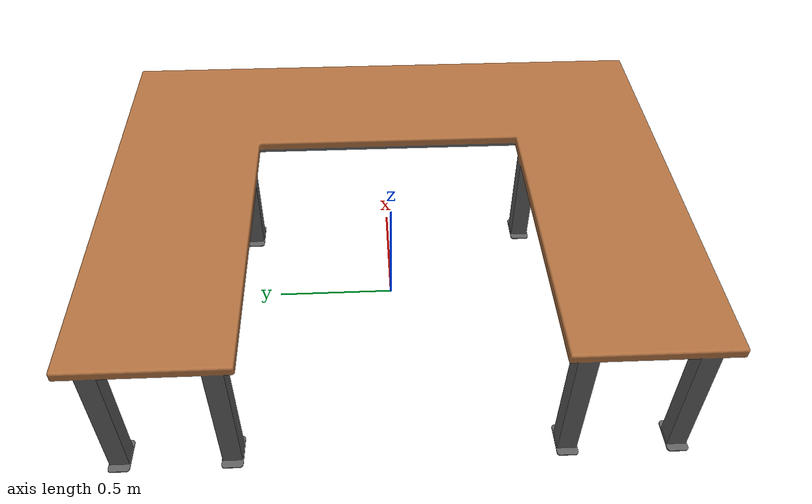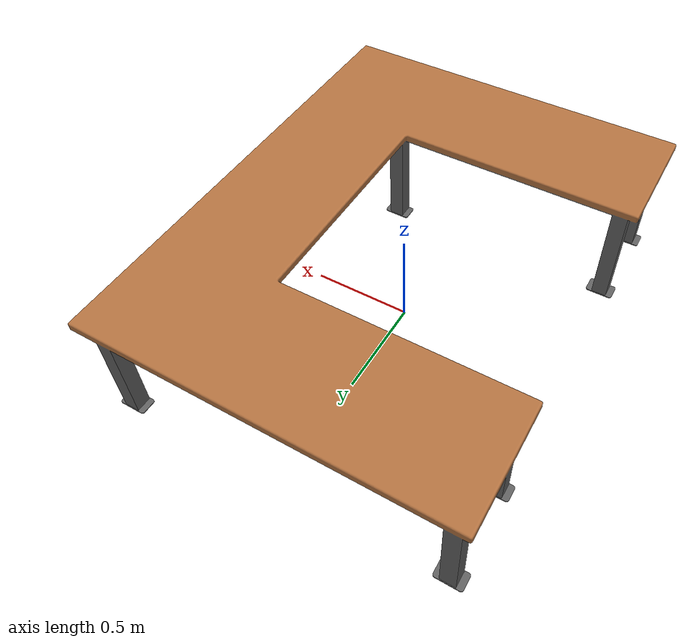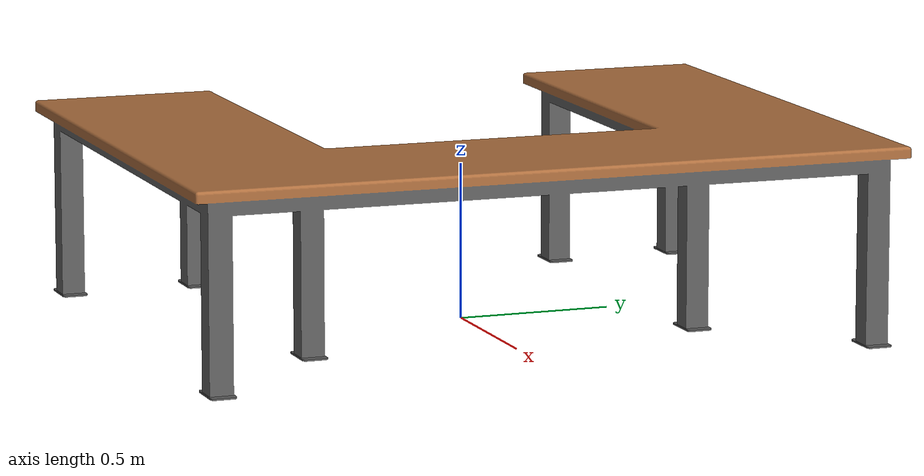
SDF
<?xml version="1.0" ?>
<sdf version="1.5">
  <model name="surgery_table">
    <static>true</static>
    <link name="link">
      <inertial>
        <mass>2</mass>
        <pose frame=''>0 0 0 0 0 0</pose>
        <inertia>
          <ixx>0.1</ixx>
          <ixy>0</ixy>
          <ixz>0</ixz>
          <iyy>0.1</iyy>
          <iyz>0</iyz>
          <izz>0.1</izz>
        </inertia>
      </inertial>

      <collision name="collision">
        <geometry>
         <mesh>
		  <scale>0.01 0.01 0.01</scale>
          <uri>model://surgery_table/meshes/surgery_table.dae</uri>
         </mesh>
        </geometry>
        <surface>
          <friction>
            <ode>
              <mu>100</mu>
              <mu2>50</mu2>
            </ode>
          </friction>
        </surface>
      </collision>
      <visual name="visual">
        <cast_shadows>false</cast_shadows>
        <geometry>
		 <mesh>
		  <scale>0.01 0.01 0.01</scale>
          <uri>model://surgery_table/meshes/surgery_table.dae</uri>
         </mesh>
        </geometry>
      </visual>
    </link>
  </model>
</sdf>
